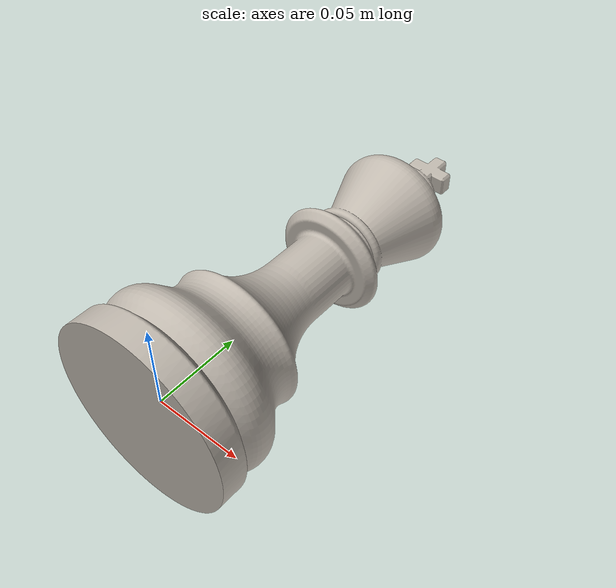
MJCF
<mujoco model="king">
  <asset>
    <mesh file="meshes/king.stl" name="king_mesh" scale="0.001 0.001 0.001"/>
    <texture file="../textures/chess_texture.png" type="2d" name="tex-king" />
    <material name="mat-king" reflectance="0.2" texrepeat="1 1" texture="tex-king" texuniform="true"/>
  </asset>
  <worldbody>
    <body>
      <body name="object">
        <geom pos="0 0 0" mesh="king_mesh" type="mesh" solimp="0.998 0.998 0.001" solref="0.001 1" density="5000" friction="0.5 0.3 0.1" material="mat-king" group="0" condim="4"/>
      </body>
      <site rgba="0 0 0 0" size="0.005" pos="0 0 0" name="king_site"/>
    </body>
  </worldbody>
</mujoco>
